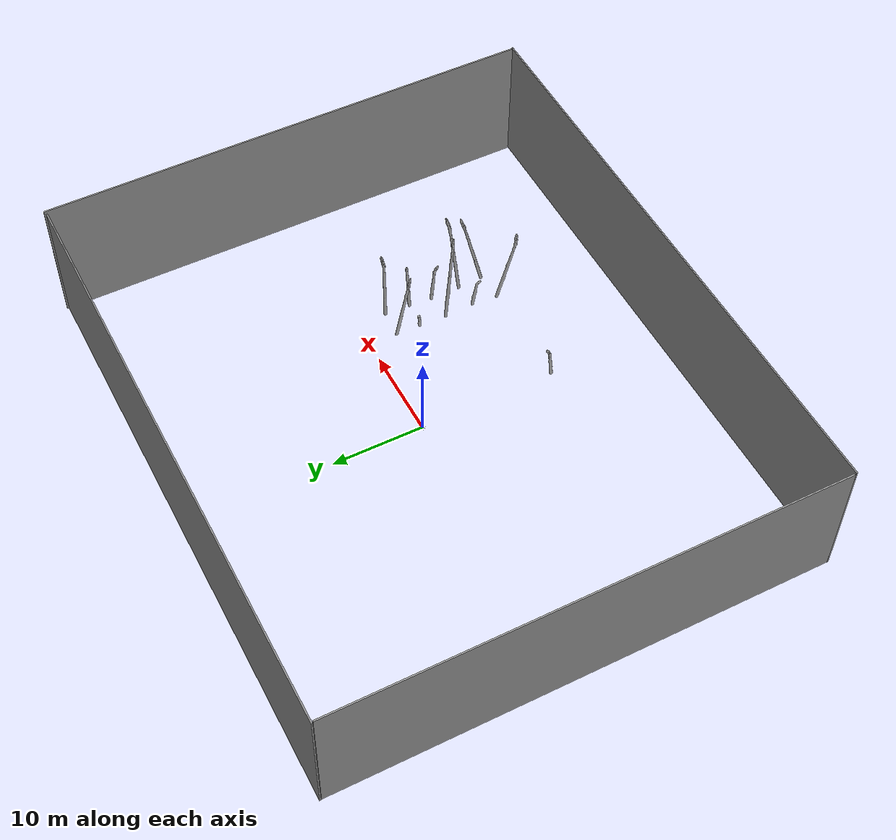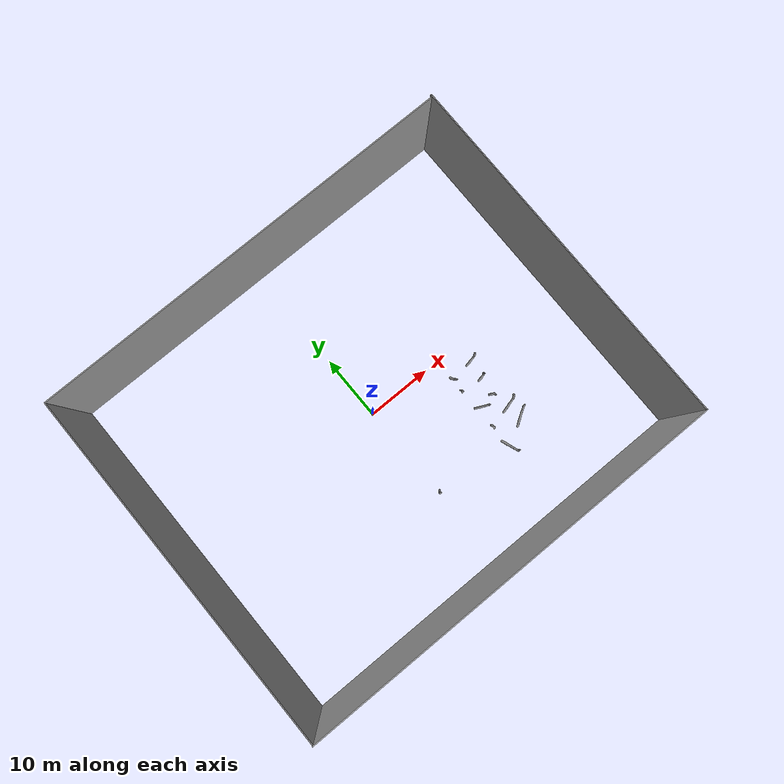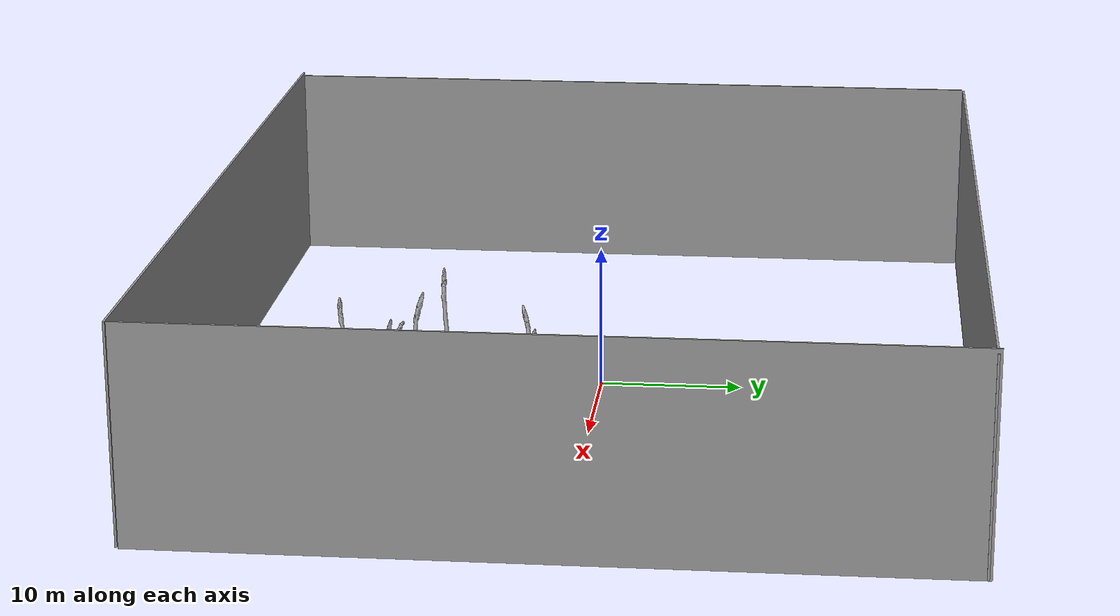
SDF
<sdf version="1.6">
 <world name="default">
  <model name="asparagus_2">
   <pose>11.9868 -14.8347 0 0.000114 -0.224599 1.247</pose>
   <static>1</static>
   <link name="asparagus_2">
    <visual name="visual">
     <geometry>
      <mesh><uri>model://Asparagus/meshes/asparagus.obj</uri><scale>0.4 0.4 0.474974</scale></mesh>
     </geometry>
    </visual>
    <collision name="collision">
     <geometry>
      <mesh><uri>model://Asparagus/meshes/asparagus.obj</uri><scale>0.4 0.4 0.474974</scale></mesh>
     </geometry>
    </collision>
   </link>
  </model>
  <model name="asparagus_5">
   <pose>12.2064 -12.2906 0 0.104177 0.090335 -1.90295</pose>
   <static>1</static>
   <link name="asparagus_5">
    <visual name="visual">
     <geometry>
      <mesh><uri>model://Asparagus/meshes/asparagus.obj</uri><scale>0.4 0.4 0.205331</scale></mesh>
     </geometry>
    </visual>
    <collision name="collision">
     <geometry>
      <mesh><uri>model://Asparagus/meshes/asparagus.obj</uri><scale>0.4 0.4 0.205331</scale></mesh>
     </geometry>
    </collision>
   </link>
  </model>
  <model name="asparagus_8">
   <pose>11.8611 -8.73266 0 -0.059408 -0.043272 2.53301</pose>
   <static>1</static>
   <link name="asparagus_8">
    <visual name="visual">
     <geometry>
      <mesh><uri>model://Asparagus/meshes/asparagus.obj</uri><scale>0.4 0.4 0.581983</scale></mesh>
     </geometry>
    </visual>
    <collision name="collision">
     <geometry>
      <mesh><uri>model://Asparagus/meshes/asparagus.obj</uri><scale>0.4 0.4 0.581983</scale></mesh>
     </geometry>
    </collision>
   </link>
  </model>
  <model name="asparagus_11">
   <pose>12.1096 -5.77957 0 -0.018831 0.134193 2.37444</pose>
   <static>1</static>
   <link name="asparagus_11">
    <visual name="visual">
     <geometry>
      <mesh><uri>model://Asparagus/meshes/asparagus.obj</uri><scale>0.4 0.4 0.103591</scale></mesh>
     </geometry>
    </visual>
    <collision name="collision">
     <geometry>
      <mesh><uri>model://Asparagus/meshes/asparagus.obj</uri><scale>0.4 0.4 0.103591</scale></mesh>
     </geometry>
    </collision>
   </link>
  </model>
  <model name="asparagus_14">
   <pose>12.211 -3.13531 0 0.166745 -0.054913 -0.584035</pose>
   <static>1</static>
   <link name="asparagus_14">
    <visual name="visual">
     <geometry>
      <mesh><uri>model://Asparagus/meshes/asparagus.obj</uri><scale>0.4 0.4 0.459307</scale></mesh>
     </geometry>
    </visual>
    <collision name="collision">
     <geometry>
      <mesh><uri>model://Asparagus/meshes/asparagus.obj</uri><scale>0.4 0.4 0.459307</scale></mesh>
     </geometry>
    </collision>
   </link>
  </model>
  <model name="asparagus_31">
   <pose>0.278535 -14.9634 0 -0.110798 0.074588 1.03012</pose>
   <static>1</static>
   <link name="asparagus_31">
    <visual name="visual">
     <geometry>
      <mesh><uri>model://Asparagus/meshes/asparagus.obj</uri><scale>0.4 0.4 0.208472</scale></mesh>
     </geometry>
    </visual>
    <collision name="collision">
     <geometry>
      <mesh><uri>model://Asparagus/meshes/asparagus.obj</uri><scale>0.4 0.4 0.208472</scale></mesh>
     </geometry>
    </collision>
   </link>
  </model>
  <model name="asparagus_32">
   <pose>15.197 -14.8043 0 -0.222197 0.072224 0.147284</pose>
   <static>1</static>
   <link name="asparagus_32">
    <visual name="visual">
     <geometry>
      <mesh><uri>model://Asparagus/meshes/asparagus.obj</uri><scale>0.4 0.4 0.48171</scale></mesh>
     </geometry>
    </visual>
    <collision name="collision">
     <geometry>
      <mesh><uri>model://Asparagus/meshes/asparagus.obj</uri><scale>0.4 0.4 0.48171</scale></mesh>
     </geometry>
    </collision>
   </link>
  </model>
  <model name="asparagus_35">
   <pose>14.8285 -11.8467 0 0.056167 0.094776 1.80159</pose>
   <static>1</static>
   <link name="asparagus_35">
    <visual name="visual">
     <geometry>
      <mesh><uri>model://Asparagus/meshes/asparagus.obj</uri><scale>0.4 0.4 0.555698</scale></mesh>
     </geometry>
    </visual>
    <collision name="collision">
     <geometry>
      <mesh><uri>model://Asparagus/meshes/asparagus.obj</uri><scale>0.4 0.4 0.555698</scale></mesh>
     </geometry>
    </collision>
   </link>
  </model>
  <model name="asparagus_38">
   <pose>14.8846 -8.73147 0 0.04256 0.058534 -1.79581</pose>
   <static>1</static>
   <link name="asparagus_38">
    <visual name="visual">
     <geometry>
      <mesh><uri>model://Asparagus/meshes/asparagus.obj</uri><scale>0.4 0.4 0.259679</scale></mesh>
     </geometry>
    </visual>
    <collision name="collision">
     <geometry>
      <mesh><uri>model://Asparagus/meshes/asparagus.obj</uri><scale>0.4 0.4 0.259679</scale></mesh>
     </geometry>
    </collision>
   </link>
  </model>
  <model name="asparagus_41">
   <pose>14.9898 -6.04743 0 0.039948 -0.003544 2.67384</pose>
   <static>1</static>
   <link name="asparagus_41">
    <visual name="visual">
     <geometry>
      <mesh><uri>model://Asparagus/meshes/asparagus.obj</uri><scale>0.4 0.4 0.313937</scale></mesh>
     </geometry>
    </visual>
    <collision name="collision">
     <geometry>
      <mesh><uri>model://Asparagus/meshes/asparagus.obj</uri><scale>0.4 0.4 0.313937</scale></mesh>
     </geometry>
    </collision>
   </link>
  </model>
  <model name="asparagus_44">
   <pose>15.1939 -3.16895 0 0.000625 -0.002356 1.05457</pose>
   <static>1</static>
   <link name="asparagus_44">
    <visual name="visual">
     <geometry>
      <mesh><uri>model://Asparagus/meshes/asparagus.obj</uri><scale>0.4 0.4 0.442978</scale></mesh>
     </geometry>
    </visual>
    <collision name="collision">
     <geometry>
      <mesh><uri>model://Asparagus/meshes/asparagus.obj</uri><scale>0.4 0.4 0.442978</scale></mesh>
     </geometry>
    </collision>
   </link>
  </model>
  <model name="asparagus_75">
   <static>1</static>
   <link name="asparagus_75">
    <visual name="visual">
     <geometry>
      <mesh><uri>model://Asparagus/meshes/asparagus.obj</uri><scale>0.4 0.4 0.084449</scale></mesh>
     </geometry>
    </visual>
    <collision name="collision">
     <geometry>
      <mesh><uri>model://Asparagus/meshes/asparagus.obj</uri><scale>0.4 0.4 0.084449</scale></mesh>
     </geometry>
    </collision>
   </link>
  </model>
  <model name="wall">
   <link name="Wall_10">
    <pose>0 -26.8 5.95973 0 -0 3.14159</pose>
    <inertial>
     <inertia><ixx>0</ixx><ixy>0</ixy><ixz>0</ixz><iyy>0</iyy><iyz>0</iyz><izz>0</izz></inertia>
     <mass>0</mass>
    </inertial>
    <visual name="Wall_10_Visual">
     <pose>0 0 1.25 0 -0 0</pose>
     <geometry><box><size>63.75 0.15 14.7461</size></box></geometry>
     <material>
      <script><uri>file://media/materials/scripts/gazebo.material</uri><name>Gazebo/Grey</name></script>
      <ambient>1 1 1 1</ambient>
      <shader type="pixel"/>
     </material>
     <meta><layer>0</layer></meta>
    </visual>
    <collision name="Wall_10_Collision">
     <pose>0 0 1.25 0 -0 0</pose>
     <geometry><box><size>63.75 0.15 14.7461</size></box></geometry>
     <surface>
      <friction>
       <ode><mu>1</mu><mu2>1</mu2><fdir1>0 0 0</fdir1><slip1>0</slip1><slip2>0</slip2></ode>
       <torsional>
        <coefficient>1</coefficient>
        <patch_radius>0</patch_radius>
        <surface_radius>0</surface_radius>
        <use_patch_radius>1</use_patch_radius>
        <ode><slip>0</slip></ode>
       </torsional>
      </friction>
      <bounce><restitution_coefficient>0</restitution_coefficient><threshold>1e+06</threshold></bounce>
      <contact>
       <collide_without_contact>0</collide_without_contact>
       <collide_without_contact_bitmask>1</collide_without_contact_bitmask>
       <collide_bitmask>1</collide_bitmask>
       <ode>
        <soft_cfm>0</soft_cfm>
        <soft_erp>0.2</soft_erp>
        <kp>1e+13</kp>
        <kd>1</kd>
        <max_vel>0.01</max_vel>
        <min_depth>0</min_depth>
       </ode>
       <bullet>
        <split_impulse>1</split_impulse>
        <split_impulse_penetration_threshold>-0.01</split_impulse_penetration_threshold>
        <soft_cfm>0</soft_cfm>
        <soft_erp>0.2</soft_erp>
        <kp>1e+13</kp>
        <kd>1</kd>
       </bullet>
      </contact>
     </surface>
    </collision>
   </link>
   <link name="Wall_11">
    <pose>-31.7888 -0.080114 5.85098 0 -0 1.5708</pose>
    <inertial>
     <inertia><ixx>0</ixx><ixy>0</ixy><ixz>0</ixz><iyy>0</iyy><iyz>0</iyz><izz>0</izz></inertia>
     <mass>0</mass>
    </inertial>
    <visual name="Wall_11_Visual">
     <pose>0 0 1.25 0 -0 0</pose>
     <geometry><box><size>53.5 0.15 14.5131</size></box></geometry>
     <material>
      <script><uri>file://media/materials/scripts/gazebo.material</uri><name>Gazebo/Grey</name></script>
      <ambient>1 1 1 1</ambient>
      <shader type="pixel"/>
     </material>
     <meta><layer>0</layer></meta>
    </visual>
    <collision name="Wall_11_Collision">
     <pose>0 0 1.25 0 -0 0</pose>
     <geometry><box><size>53.5 0.15 14.5131</size></box></geometry>
     <surface>
      <friction>
       <ode><mu>1</mu><mu2>1</mu2><fdir1>0 0 0</fdir1><slip1>0</slip1><slip2>0</slip2></ode>
       <torsional>
        <coefficient>1</coefficient>
        <patch_radius>0</patch_radius>
        <surface_radius>0</surface_radius>
        <use_patch_radius>1</use_patch_radius>
        <ode><slip>0</slip></ode>
       </torsional>
      </friction>
      <bounce><restitution_coefficient>0</restitution_coefficient><threshold>1e+06</threshold></bounce>
      <contact>
       <collide_without_contact>0</collide_without_contact>
       <collide_without_contact_bitmask>1</collide_without_contact_bitmask>
       <collide_bitmask>1</collide_bitmask>
       <ode>
        <soft_cfm>0</soft_cfm>
        <soft_erp>0.2</soft_erp>
        <kp>1e+13</kp>
        <kd>1</kd>
        <max_vel>0.01</max_vel>
        <min_depth>0</min_depth>
       </ode>
       <bullet>
        <split_impulse>1</split_impulse>
        <split_impulse_penetration_threshold>-0.01</split_impulse_penetration_threshold>
        <soft_cfm>0</soft_cfm>
        <soft_erp>0.2</soft_erp>
        <kp>1e+13</kp>
        <kd>1</kd>
       </bullet>
      </contact>
     </surface>
    </collision>
   </link>
   <link name="Wall_8">
    <pose>0 26.8 5.7562 0 -0 0</pose>
    <inertial>
     <inertia><ixx>0</ixx><ixy>0</ixy><ixz>0</ixz><iyy>0</iyy><iyz>0</iyz><izz>0</izz></inertia>
     <mass>0</mass>
    </inertial>
    <visual name="Wall_8_Visual">
     <pose>0 0 1.25 0 -0 0</pose>
     <geometry><box><size>63.75 0.15 14.4839</size></box></geometry>
     <material>
      <script><uri>file://media/materials/scripts/gazebo.material</uri><name>Gazebo/Grey</name></script>
      <ambient>1 1 1 1</ambient>
      <shader type="pixel"/>
     </material>
     <meta><layer>0</layer></meta>
    </visual>
    <collision name="Wall_8_Collision">
     <pose>0 0 1.25 0 -0 0</pose>
     <geometry><box><size>63.75 0.15 14.4839</size></box></geometry>
     <surface>
      <friction>
       <ode><mu>1</mu><mu2>1</mu2><fdir1>0 0 0</fdir1><slip1>0</slip1><slip2>0</slip2></ode>
       <torsional>
        <coefficient>1</coefficient>
        <patch_radius>0</patch_radius>
        <surface_radius>0</surface_radius>
        <use_patch_radius>1</use_patch_radius>
        <ode><slip>0</slip></ode>
       </torsional>
      </friction>
      <bounce><restitution_coefficient>0</restitution_coefficient><threshold>1e+06</threshold></bounce>
      <contact>
       <collide_without_contact>0</collide_without_contact>
       <collide_without_contact_bitmask>1</collide_without_contact_bitmask>
       <collide_bitmask>1</collide_bitmask>
       <ode>
        <soft_cfm>0</soft_cfm>
        <soft_erp>0.2</soft_erp>
        <kp>1e+13</kp>
        <kd>1</kd>
        <max_vel>0.01</max_vel>
        <min_depth>0</min_depth>
       </ode>
       <bullet>
        <split_impulse>1</split_impulse>
        <split_impulse_penetration_threshold>-0.01</split_impulse_penetration_threshold>
        <soft_cfm>0</soft_cfm>
        <soft_erp>0.2</soft_erp>
        <kp>1e+13</kp>
        <kd>1</kd>
       </bullet>
      </contact>
     </surface>
    </collision>
   </link>
   <link name="Wall_9">
    <pose>31.7345 0.174403 5.9046 0 0 -1.5708</pose>
    <inertial>
     <inertia><ixx>0</ixx><ixy>0</ixy><ixz>0</ixz><iyy>0</iyy><iyz>0</iyz><izz>0</izz></inertia>
     <mass>0</mass>
    </inertial>
    <visual name="Wall_9_Visual">
     <pose>0 0 1.25 0 -0 0</pose>
     <geometry><box><size>53.75 0.15 14.8374</size></box></geometry>
     <material>
      <script><uri>file://media/materials/scripts/gazebo.material</uri><name>Gazebo/Grey</name></script>
      <ambient>1 1 1 1</ambient>
      <shader type="pixel"/>
     </material>
     <meta><layer>0</layer></meta>
    </visual>
    <collision name="Wall_9_Collision">
     <pose>0 0 1.25 0 -0 0</pose>
     <geometry><box><size>53.75 0.15 14.8374</size></box></geometry>
     <surface>
      <friction>
       <ode><mu>1</mu><mu2>1</mu2><fdir1>0 0 0</fdir1><slip1>0</slip1><slip2>0</slip2></ode>
       <torsional>
        <coefficient>1</coefficient>
        <patch_radius>0</patch_radius>
        <surface_radius>0</surface_radius>
        <use_patch_radius>1</use_patch_radius>
        <ode><slip>0</slip></ode>
       </torsional>
      </friction>
      <bounce><restitution_coefficient>0</restitution_coefficient><threshold>1e+06</threshold></bounce>
      <contact>
       <collide_without_contact>0</collide_without_contact>
       <collide_without_contact_bitmask>1</collide_without_contact_bitmask>
       <collide_bitmask>1</collide_bitmask>
       <ode>
        <soft_cfm>0</soft_cfm>
        <soft_erp>0.2</soft_erp>
        <kp>1e+13</kp>
        <kd>1</kd>
        <max_vel>0.01</max_vel>
        <min_depth>0</min_depth>
       </ode>
       <bullet>
        <split_impulse>1</split_impulse>
        <split_impulse_penetration_threshold>-0.01</split_impulse_penetration_threshold>
        <soft_cfm>0</soft_cfm>
        <soft_erp>0.2</soft_erp>
        <kp>1e+13</kp>
        <kd>1</kd>
       </bullet>
      </contact>
     </surface>
    </collision>
   </link>
   <static>1</static>
   <pose>0.039712 -0.497969 0 0 -0 0</pose>
  </model>
 </world>
</sdf>
